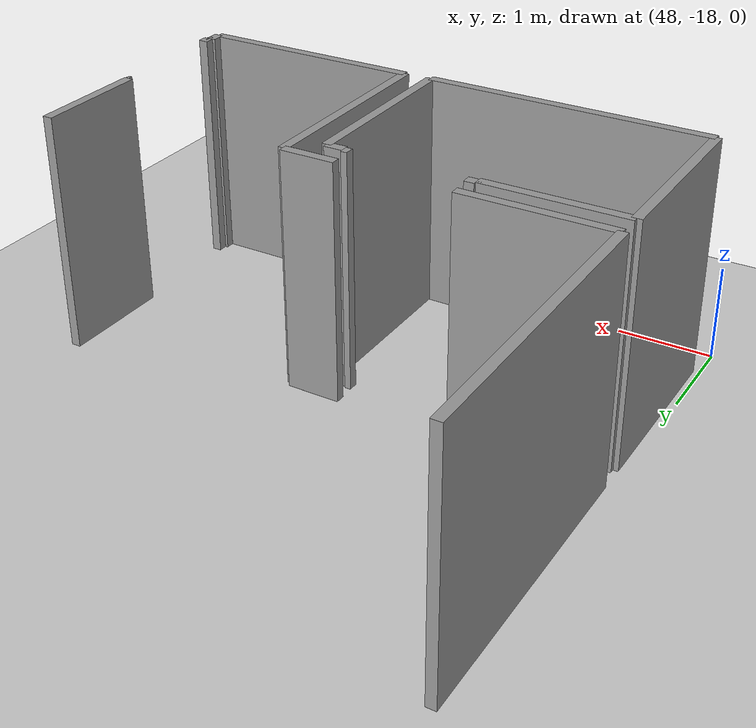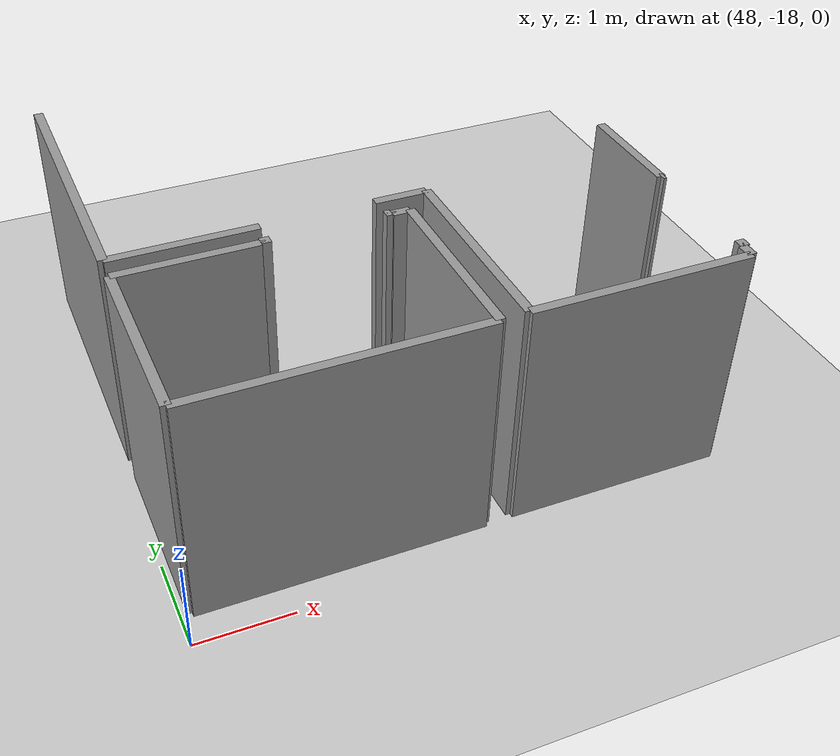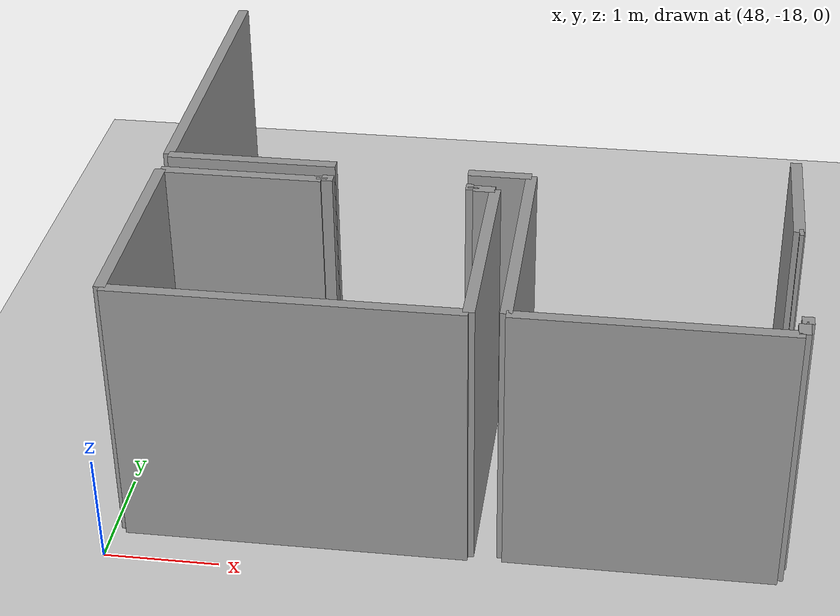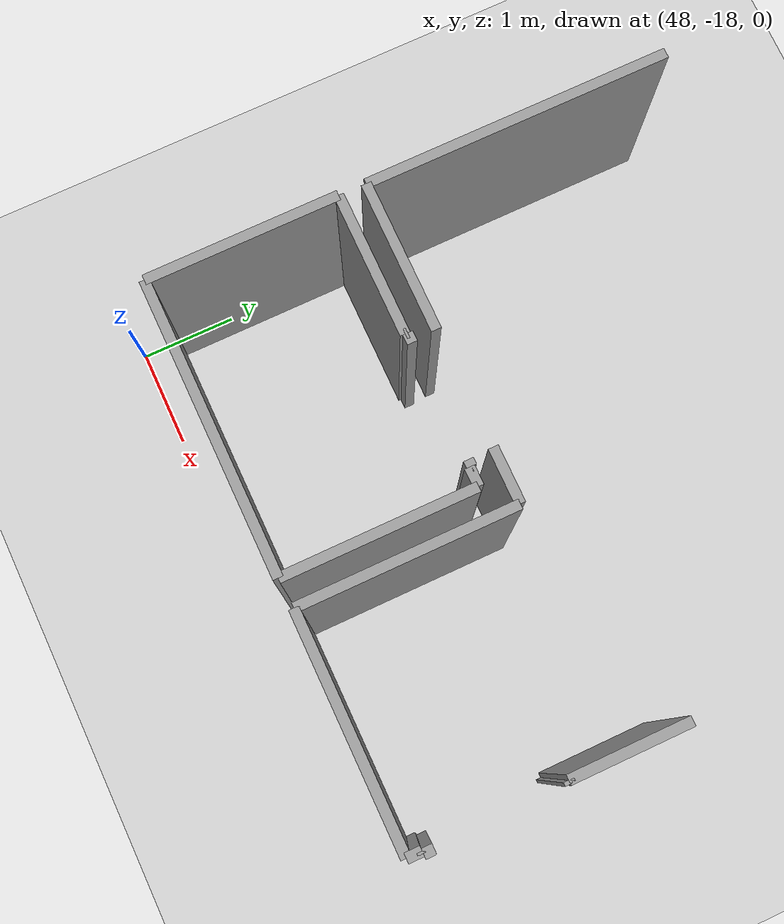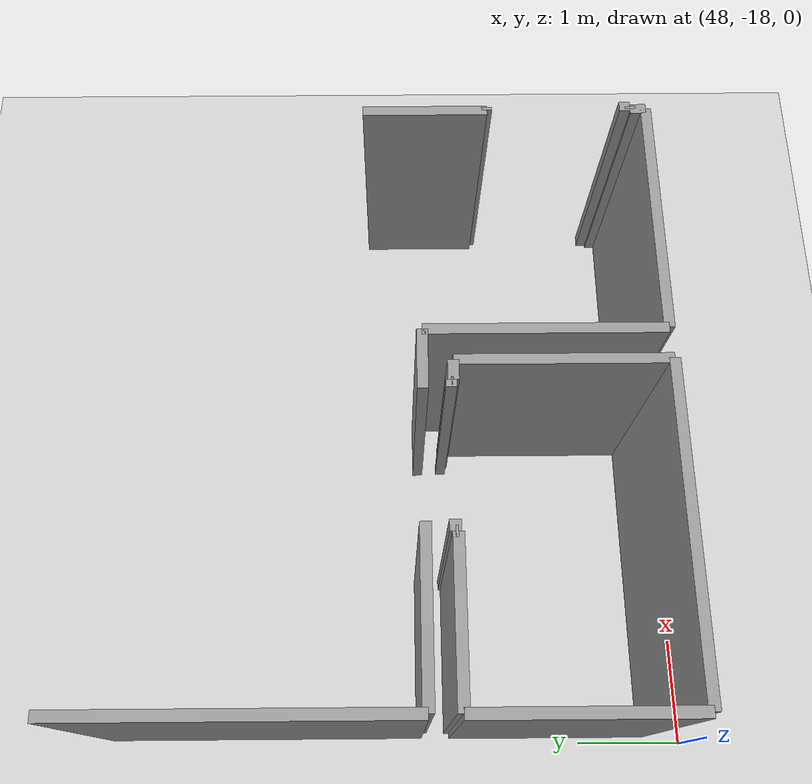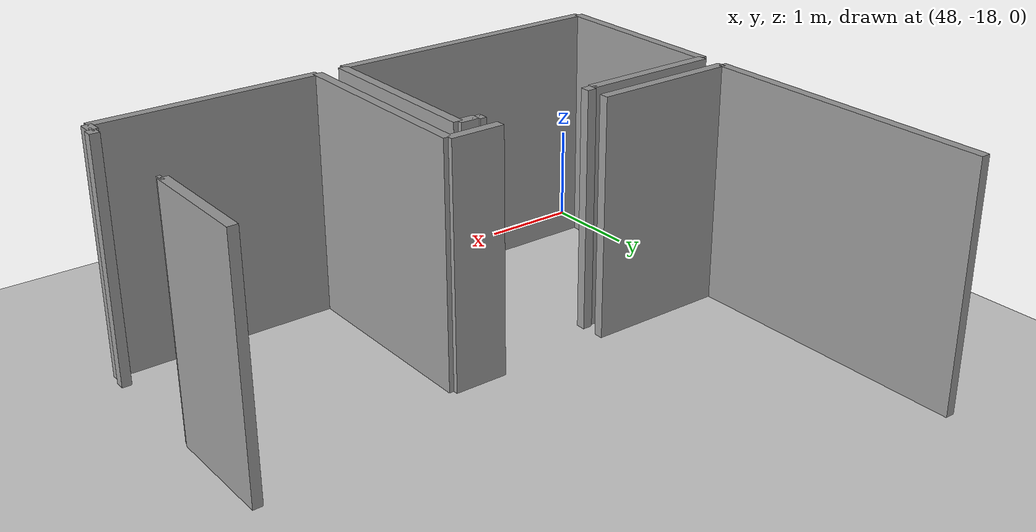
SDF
<sdf version="1.6">
 <world name="default">
  <model name="ground_plane">
   <static>1</static>
   <link name="link">
    <collision name="collision">
     <geometry><plane><normal>0 0 1</normal><size>100 100</size></plane></geometry>
     <surface><friction><ode><mu>100</mu><mu2>50</mu2></ode></friction></surface>
    </collision>
    <visual name="visual">
     <cast_shadows>0</cast_shadows>
     <geometry><plane><normal>0 0 1</normal><size>100 100</size></plane></geometry>
     <material>
      <script><uri>file://media/materials/scripts/gazebo.material</uri><name>Gazebo/Grey</name></script>
     </material>
    </visual>
   </link>
  </model>
  <model name="0510030939_A_40_1_103">
   <static>1</static>
   <link name="Wall_251">
    <collision name="Wall_251_Collision">
     <geometry><box><size>3.06369730279 0.1 2.5</size></box></geometry>
     <pose>1.5318486514 0 1.25 0 0 0</pose>
    </collision>
    <visual name="Wall_251_Visual">
     <pose>1.5318486514 0 1.25 0 0 0</pose>
     <geometry><box><size>3.06369730279 0.1 2.5</size></box></geometry>
     <material>
      <script><uri>file://media/materials/scripts/gazebo.material</uri><name>Gazebo/Grey</name></script>
      <ambient>1 1 1 1</ambient>
     </material>
    </visual>
    <pose>105.764501064 -33.1045525304 0 0 0 1.57079632679</pose>
   </link>
   <link name="Wall_261">
    <collision name="Wall_261_Collision">
     <geometry><box><size>1.18486513963 0.1 2.5</size></box></geometry>
     <pose>0.592432569813 0 1.25 0 0 0</pose>
    </collision>
    <visual name="Wall_261_Visual">
     <pose>0.592432569813 0 1.25 0 0 0</pose>
     <geometry><box><size>1.18486513963 0.1 2.5</size></box></geometry>
     <material>
      <script><uri>file://media/materials/scripts/gazebo.material</uri><name>Gazebo/Grey</name></script>
      <ambient>1 1 1 1</ambient>
     </material>
    </visual>
    <pose>111.328944944 -32.5790894939 0 0 0 -1.57079632679</pose>
   </link>
   <link name="Wall_262">
    <collision name="Wall_262_Collision">
     <geometry><box><size>0.0355815357245 0.1 2.5</size></box></geometry>
     <pose>0.0177907678622 0 1.25 0 0 0</pose>
    </collision>
    <visual name="Wall_262_Visual">
     <pose>0.0177907678622 0 1.25 0 0 0</pose>
     <geometry><box><size>0.0355815357245 0.1 2.5</size></box></geometry>
     <material>
      <script><uri>file://media/materials/scripts/gazebo.material</uri><name>Gazebo/Grey</name></script>
      <ambient>1 1 1 1</ambient>
     </material>
    </visual>
    <pose>111.328944944 -33.7639546335 0 0 0 0.0</pose>
   </link>
   <link name="Wall_264">
    <collision name="Wall_264_Collision">
     <geometry><box><size>0.101153222988 0.1 2.5</size></box></geometry>
     <pose>0.0505766114941 0 1.25 0 0 0</pose>
    </collision>
    <visual name="Wall_264_Visual">
     <pose>0.0505766114941 0 1.25 0 0 0</pose>
     <geometry><box><size>0.101153222988 0.1 2.5</size></box></geometry>
     <material>
      <script><uri>file://media/materials/scripts/gazebo.material</uri><name>Gazebo/Grey</name></script>
      <ambient>1 1 1 1</ambient>
     </material>
    </visual>
    <pose>111.36452648 -35.0345966896 0 0 0 -1.57079632679</pose>
   </link>
   <link name="Wall_265">
    <collision name="Wall_265_Collision">
     <geometry><box><size>0.0274486132732 0.1 2.5</size></box></geometry>
     <pose>0.0137243066366 0 1.25 0 0 0</pose>
    </collision>
    <visual name="Wall_265_Visual">
     <pose>0.0137243066366 0 1.25 0 0 0</pose>
     <geometry><box><size>0.0274486132732 0.1 2.5</size></box></geometry>
     <material>
      <script><uri>file://media/materials/scripts/gazebo.material</uri><name>Gazebo/Grey</name></script>
      <ambient>1 1 1 1</ambient>
     </material>
    </visual>
    <pose>111.36452648 -35.1357499126 0 0 0 3.14159265359</pose>
   </link>
   <link name="Wall_266">
    <collision name="Wall_266_Collision">
     <geometry><box><size>0.14740921943 0.1 2.5</size></box></geometry>
     <pose>0.073704609715 0 1.25 0 0 0</pose>
    </collision>
    <visual name="Wall_266_Visual">
     <pose>0.073704609715 0 1.25 0 0 0</pose>
     <geometry><box><size>0.14740921943 0.1 2.5</size></box></geometry>
     <material>
      <script><uri>file://media/materials/scripts/gazebo.material</uri><name>Gazebo/Grey</name></script>
      <ambient>1 1 1 1</ambient>
     </material>
    </visual>
    <pose>111.337077866 -35.1357499126 0 0 0 -1.57079632679</pose>
   </link>
   <link name="Wall_267">
    <collision name="Wall_267_Collision">
     <geometry><box><size>2.31343520666 0.1 2.5</size></box></geometry>
     <pose>1.15671760333 0 1.25 0 0 0</pose>
    </collision>
    <visual name="Wall_267_Visual">
     <pose>1.15671760333 0 1.25 0 0 0</pose>
     <geometry><box><size>2.31343520666 0.1 2.5</size></box></geometry>
     <material>
      <script><uri>file://media/materials/scripts/gazebo.material</uri><name>Gazebo/Grey</name></script>
      <ambient>1 1 1 1</ambient>
     </material>
    </visual>
    <pose>111.337077866 -35.2831591321 0 0 0 3.14159265359</pose>
   </link>
   <link name="Wall_268">
    <collision name="Wall_268_Collision">
     <geometry><box><size>2.17695460177 0.1 2.5</size></box></geometry>
     <pose>1.08847730089 0 1.25 0 0 0</pose>
    </collision>
    <visual name="Wall_268_Visual">
     <pose>1.08847730089 0 1.25 0 0 0</pose>
     <geometry><box><size>2.17695460177 0.1 2.5</size></box></geometry>
     <material>
      <script><uri>file://media/materials/scripts/gazebo.material</uri><name>Gazebo/Grey</name></script>
      <ambient>1 1 1 1</ambient>
     </material>
    </visual>
    <pose>109.02364266 -35.2831591321 0 0 0 1.57079632679</pose>
   </link>
   <link name="Wall_269">
    <collision name="Wall_269_Collision">
     <geometry><box><size>0.560027956921 0.1 2.5</size></box></geometry>
     <pose>0.28001397846 0 1.25 0 0 0</pose>
    </collision>
    <visual name="Wall_269_Visual">
     <pose>0.28001397846 0 1.25 0 0 0</pose>
     <geometry><box><size>0.560027956921 0.1 2.5</size></box></geometry>
     <material>
      <script><uri>file://media/materials/scripts/gazebo.material</uri><name>Gazebo/Grey</name></script>
      <ambient>1 1 1 1</ambient>
     </material>
    </visual>
    <pose>109.02364266 -33.1062045303 0 0 0 3.14159265359</pose>
   </link>
   <link name="Wall_270">
    <collision name="Wall_270_Collision">
     <geometry><box><size>1.5184429357 0.1 2.5</size></box></geometry>
     <pose>0.759221467848 0 1.25 0 0 0</pose>
    </collision>
    <visual name="Wall_270_Visual">
     <pose>0.759221467848 0 1.25 0 0 0</pose>
     <geometry><box><size>1.5184429357 0.1 2.5</size></box></geometry>
     <material>
      <script><uri>file://media/materials/scripts/gazebo.material</uri><name>Gazebo/Grey</name></script>
      <ambient>1 1 1 1</ambient>
     </material>
    </visual>
    <pose>107.282943101 -33.1062045303 0 0 0 3.14050469687</pose>
   </link>
   <link name="Wall_271">
    <collision name="Wall_271_Collision">
     <geometry><box><size>1.92546939035 0.1 2.5</size></box></geometry>
     <pose>0.962734695174 0 1.25 0 0 0</pose>
    </collision>
    <visual name="Wall_271_Visual">
     <pose>0.962734695174 0 1.25 0 0 0</pose>
     <geometry><box><size>1.92546939035 0.1 2.5</size></box></geometry>
     <material>
      <script><uri>file://media/materials/scripts/gazebo.material</uri><name>Gazebo/Grey</name></script>
      <ambient>1 1 1 1</ambient>
     </material>
    </visual>
    <pose>105.760307526 -35.3020935921 0 0 0 1.57079632679</pose>
   </link>
   <link name="Wall_272">
    <collision name="Wall_272_Collision">
     <geometry><box><size>1.44143342758 0.1 2.5</size></box></geometry>
     <pose>0.720716713791 0 1.25 0 0 0</pose>
    </collision>
    <visual name="Wall_272_Visual">
     <pose>0.720716713791 0 1.25 0 0 0</pose>
     <geometry><box><size>1.44143342758 0.1 2.5</size></box></geometry>
     <material>
      <script><uri>file://media/materials/scripts/gazebo.material</uri><name>Gazebo/Grey</name></script>
      <ambient>1 1 1 1</ambient>
     </material>
    </visual>
    <pose>105.760307526 -33.3766242018 0 0 0 0.0</pose>
   </link>
   <link name="Wall_273">
    <collision name="Wall_273_Collision">
     <geometry><box><size>0.0245258442672 0.1 2.5</size></box></geometry>
     <pose>0.0122629221336 0 1.25 0 0 0</pose>
    </collision>
    <visual name="Wall_273_Visual">
     <pose>0.0122629221336 0 1.25 0 0 0</pose>
     <geometry><box><size>0.0245258442672 0.1 2.5</size></box></geometry>
     <material>
      <script><uri>file://media/materials/scripts/gazebo.material</uri><name>Gazebo/Grey</name></script>
      <ambient>1 1 1 1</ambient>
     </material>
    </visual>
    <pose>107.201740954 -33.3766242018 0 0 0 1.57079632679</pose>
   </link>
   <link name="Wall_274">
    <collision name="Wall_274_Collision">
     <geometry><box><size>0.101026146075 0.1 2.5</size></box></geometry>
     <pose>0.0505130730375 0 1.25 0 0 0</pose>
    </collision>
    <visual name="Wall_274_Visual">
     <pose>0.0505130730375 0 1.25 0 0 0</pose>
     <geometry><box><size>0.101026146075 0.1 2.5</size></box></geometry>
     <material>
      <script><uri>file://media/materials/scripts/gazebo.material</uri><name>Gazebo/Grey</name></script>
      <ambient>1 1 1 1</ambient>
     </material>
    </visual>
    <pose>107.201740954 -33.3520983575 0 0 0 0.0</pose>
   </link>
   <link name="Wall_275">
    <collision name="Wall_275_Collision">
     <geometry><box><size>0.065698764177 0.1 2.5</size></box></geometry>
     <pose>0.0328493820885 0 1.25 0 0 0</pose>
    </collision>
    <visual name="Wall_275_Visual">
     <pose>0.0328493820885 0 1.25 0 0 0</pose>
     <geometry><box><size>0.065698764177 0.1 2.5</size></box></geometry>
     <material>
      <script><uri>file://media/materials/scripts/gazebo.material</uri><name>Gazebo/Grey</name></script>
      <ambient>1 1 1 1</ambient>
     </material>
    </visual>
    <pose>108.473018394 -33.3520983575 0 0 0 0.0</pose>
   </link>
   <link name="Wall_276">
    <collision name="Wall_276_Collision">
     <geometry><box><size>0.0200781523017 0.1 2.5</size></box></geometry>
     <pose>0.0100390761508 0 1.25 0 0 0</pose>
    </collision>
    <visual name="Wall_276_Visual">
     <pose>0.0100390761508 0 1.25 0 0 0</pose>
     <geometry><box><size>0.0200781523017 0.1 2.5</size></box></geometry>
     <material>
      <script><uri>file://media/materials/scripts/gazebo.material</uri><name>Gazebo/Grey</name></script>
      <ambient>1 1 1 1</ambient>
     </material>
    </visual>
    <pose>108.538717159 -33.3520983575 0 0 0 -1.57079632679</pose>
   </link>
   <link name="Wall_277">
    <collision name="Wall_277_Collision">
     <geometry><box><size>0.192013215999 0.1 2.5</size></box></geometry>
     <pose>0.0960066079995 0 1.25 0 0 0</pose>
    </collision>
    <visual name="Wall_277_Visual">
     <pose>0.0960066079995 0 1.25 0 0 0</pose>
     <geometry><box><size>0.192013215999 0.1 2.5</size></box></geometry>
     <material>
      <script><uri>file://media/materials/scripts/gazebo.material</uri><name>Gazebo/Grey</name></script>
      <ambient>1 1 1 1</ambient>
     </material>
    </visual>
    <pose>108.538717159 -33.3721765098 0 0 0 0.0</pose>
   </link>
   <link name="Wall_278">
    <collision name="Wall_278_Collision">
     <geometry><box><size>1.92826508244 0.1 2.5</size></box></geometry>
     <pose>0.964132541221 0 1.25 0 0 0</pose>
    </collision>
    <visual name="Wall_278_Visual">
     <pose>0.964132541221 0 1.25 0 0 0</pose>
     <geometry><box><size>1.92826508244 0.1 2.5</size></box></geometry>
     <material>
      <script><uri>file://media/materials/scripts/gazebo.material</uri><name>Gazebo/Grey</name></script>
      <ambient>1 1 1 1</ambient>
     </material>
    </visual>
    <pose>108.730730375 -33.3721765098 0 0 0 -1.57079632679</pose>
   </link>
   <link name="Wall_279">
    <collision name="Wall_279_Collision">
     <geometry><box><size>2.97042330781 0.1 2.5</size></box></geometry>
     <pose>1.4852116539 0 1.25 0 0 0</pose>
    </collision>
    <visual name="Wall_279_Visual">
     <pose>1.4852116539 0 1.25 0 0 0</pose>
     <geometry><box><size>2.97042330781 0.1 2.5</size></box></geometry>
     <material>
      <script><uri>file://media/materials/scripts/gazebo.material</uri><name>Gazebo/Grey</name></script>
      <ambient>1 1 1 1</ambient>
     </material>
    </visual>
    <pose>108.730730375 -35.3004415923 0 0 0 -3.14103650391</pose>
   </link>
   <pose>-57.65 17.6622597452 0 0 0 0</pose>
  </model>
 </world>
</sdf>
